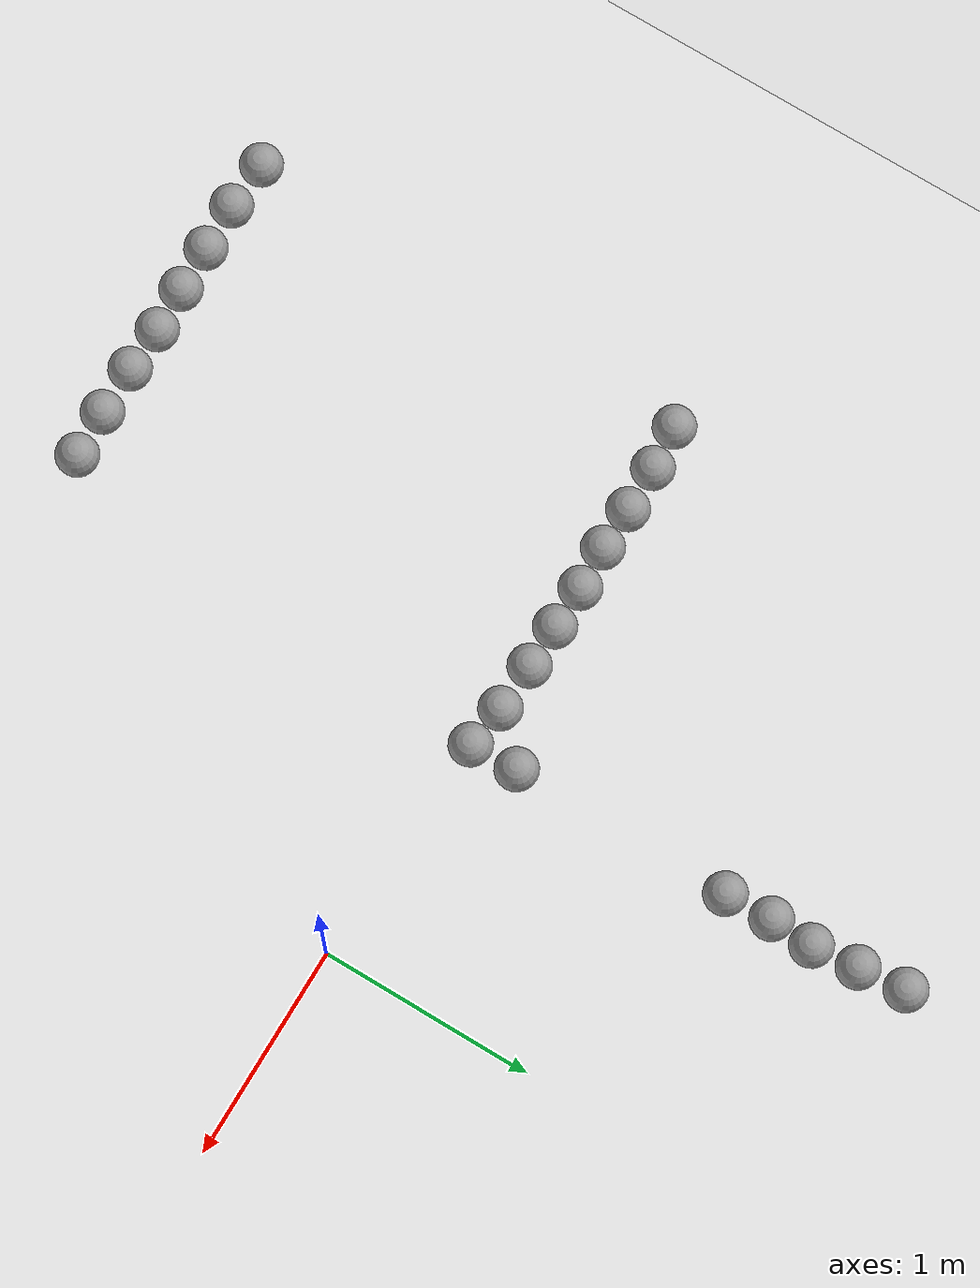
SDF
<sdf version="1.7">
 <world name="default">
  <model name="ground_plane">
   <static>1</static>
   <link name="link">
    <collision name="collision">
     <geometry><plane><normal>0 0 1</normal><size>100 100</size></plane></geometry>
     <surface>
      <contact><collide_bitmask>65535</collide_bitmask></contact>
      <friction><ode><mu>100</mu><mu2>50</mu2></ode></friction>
     </surface>
    </collision>
    <visual name="visual">
     <cast_shadows>0</cast_shadows>
     <geometry><plane><normal>0 0 1</normal><size>100 100</size></plane></geometry>
     <material>
      <script><uri>file://media/materials/scripts/gazebo.material</uri><name>Gazebo/White</name></script>
     </material>
    </visual>
   </link>
  </model>
  <model name="sphere_16">
   <link name="link_0">
    <inertial>
     <mass>1</mass>
     <inertia><ixx>0.1</ixx><ixy>0</ixy><ixz>0</ixz><iyy>0.1</iyy><iyz>0</iyz><izz>0.1</izz></inertia>
    </inertial>
    <visual name="visual">
     <geometry><sphere><radius>0.1</radius></sphere></geometry>
     <material>
      <lighting>1</lighting>
      <script><uri>file://media/materials/scripts/gazebo.material</uri><name>Gazebo/Grey</name></script>
      <shader type="pixel"><normal_map>__default__</normal_map></shader>
      <ambient>0.3 0.3 0.3 1</ambient>
      <diffuse>0.7 0.7 0.7 1</diffuse>
      <specular>0.01 0.01 0.01 1</specular>
      <emissive>0 0 0 1</emissive>
     </material>
    </visual>
    <collision name="collision">
     <geometry><sphere><radius>0.1</radius></sphere></geometry>
     <surface>
      <friction>
       <ode><mu>1</mu><mu2>1</mu2><fdir1>0 0 0</fdir1><slip1>0</slip1><slip2>0</slip2></ode>
       <torsional>
        <coefficient>1</coefficient>
        <patch_radius>0</patch_radius>
        <surface_radius>0</surface_radius>
        <use_patch_radius>1</use_patch_radius>
        <ode><slip>0</slip></ode>
       </torsional>
      </friction>
      <bounce><restitution_coefficient>0</restitution_coefficient><threshold>1e+06</threshold></bounce>
      <contact>
       <collide_without_contact>0</collide_without_contact>
       <collide_without_contact_bitmask>1</collide_without_contact_bitmask>
       <collide_bitmask>1</collide_bitmask>
       <ode>
        <soft_cfm>0</soft_cfm>
        <soft_erp>0.2</soft_erp>
        <kp>1e+13</kp>
        <kd>1</kd>
        <max_vel>0.01</max_vel>
        <min_depth>0</min_depth>
       </ode>
       <bullet>
        <split_impulse>1</split_impulse>
        <split_impulse_penetration_threshold>-0.01</split_impulse_penetration_threshold>
        <soft_cfm>0</soft_cfm>
        <soft_erp>0.2</soft_erp>
        <kp>1e+13</kp>
        <kd>1</kd>
       </bullet>
      </contact>
     </surface>
    </collision>
   </link>
   <static>0</static>
   <pose>-1.29829 -2.0832 0.1 0 -0 0</pose>
  </model>
  <model name="sphere_17">
   <link name="link_0">
    <inertial>
     <mass>1</mass>
     <inertia><ixx>0.1</ixx><ixy>0</ixy><ixz>0</ixz><iyy>0.1</iyy><iyz>0</iyz><izz>0.1</izz></inertia>
    </inertial>
    <visual name="visual">
     <geometry><sphere><radius>0.1</radius></sphere></geometry>
     <material>
      <lighting>1</lighting>
      <script><uri>file://media/materials/scripts/gazebo.material</uri><name>Gazebo/Grey</name></script>
      <shader type="pixel"><normal_map>__default__</normal_map></shader>
      <ambient>0.3 0.3 0.3 1</ambient>
      <diffuse>0.7 0.7 0.7 1</diffuse>
      <specular>0.01 0.01 0.01 1</specular>
      <emissive>0 0 0 1</emissive>
     </material>
    </visual>
    <collision name="collision">
     <geometry><sphere><radius>0.1</radius></sphere></geometry>
     <surface>
      <friction>
       <ode><mu>1</mu><mu2>1</mu2><fdir1>0 0 0</fdir1><slip1>0</slip1><slip2>0</slip2></ode>
       <torsional>
        <coefficient>1</coefficient>
        <patch_radius>0</patch_radius>
        <surface_radius>0</surface_radius>
        <use_patch_radius>1</use_patch_radius>
        <ode><slip>0</slip></ode>
       </torsional>
      </friction>
      <bounce><restitution_coefficient>0</restitution_coefficient><threshold>1e+06</threshold></bounce>
      <contact>
       <collide_without_contact>0</collide_without_contact>
       <collide_without_contact_bitmask>1</collide_without_contact_bitmask>
       <collide_bitmask>1</collide_bitmask>
       <ode>
        <soft_cfm>0</soft_cfm>
        <soft_erp>0.2</soft_erp>
        <kp>1e+13</kp>
        <kd>1</kd>
        <max_vel>0.01</max_vel>
        <min_depth>0</min_depth>
       </ode>
       <bullet>
        <split_impulse>1</split_impulse>
        <split_impulse_penetration_threshold>-0.01</split_impulse_penetration_threshold>
        <soft_cfm>0</soft_cfm>
        <soft_erp>0.2</soft_erp>
        <kp>1e+13</kp>
        <kd>1</kd>
       </bullet>
      </contact>
     </surface>
    </collision>
   </link>
   <static>0</static>
   <pose>-1.52046 -2.09272 0.1 0 -0 0</pose>
  </model>
  <model name="sphere_18">
   <link name="link_0">
    <inertial>
     <mass>1</mass>
     <inertia><ixx>0.1</ixx><ixy>0</ixy><ixz>0</ixz><iyy>0.1</iyy><iyz>0</iyz><izz>0.1</izz></inertia>
    </inertial>
    <visual name="visual">
     <geometry><sphere><radius>0.1</radius></sphere></geometry>
     <material>
      <lighting>1</lighting>
      <script><uri>file://media/materials/scripts/gazebo.material</uri><name>Gazebo/Grey</name></script>
      <shader type="pixel"><normal_map>__default__</normal_map></shader>
      <ambient>0.3 0.3 0.3 1</ambient>
      <diffuse>0.7 0.7 0.7 1</diffuse>
      <specular>0.01 0.01 0.01 1</specular>
      <emissive>0 0 0 1</emissive>
     </material>
    </visual>
    <collision name="collision">
     <geometry><sphere><radius>0.1</radius></sphere></geometry>
     <surface>
      <friction>
       <ode><mu>1</mu><mu2>1</mu2><fdir1>0 0 0</fdir1><slip1>0</slip1><slip2>0</slip2></ode>
       <torsional>
        <coefficient>1</coefficient>
        <patch_radius>0</patch_radius>
        <surface_radius>0</surface_radius>
        <use_patch_radius>1</use_patch_radius>
        <ode><slip>0</slip></ode>
       </torsional>
      </friction>
      <bounce><restitution_coefficient>0</restitution_coefficient><threshold>1e+06</threshold></bounce>
      <contact>
       <collide_without_contact>0</collide_without_contact>
       <collide_without_contact_bitmask>1</collide_without_contact_bitmask>
       <collide_bitmask>1</collide_bitmask>
       <ode>
        <soft_cfm>0</soft_cfm>
        <soft_erp>0.2</soft_erp>
        <kp>1e+13</kp>
        <kd>1</kd>
        <max_vel>0.01</max_vel>
        <min_depth>0</min_depth>
       </ode>
       <bullet>
        <split_impulse>1</split_impulse>
        <split_impulse_penetration_threshold>-0.01</split_impulse_penetration_threshold>
        <soft_cfm>0</soft_cfm>
        <soft_erp>0.2</soft_erp>
        <kp>1e+13</kp>
        <kd>1</kd>
       </bullet>
      </contact>
     </surface>
    </collision>
   </link>
   <static>0</static>
   <pose>-1.75031 -2.09462 0.1 0 -0 0</pose>
  </model>
  <model name="sphere_19">
   <link name="link_0">
    <inertial>
     <mass>1</mass>
     <inertia><ixx>0.1</ixx><ixy>0</ixy><ixz>0</ixz><iyy>0.1</iyy><iyz>0</iyz><izz>0.1</izz></inertia>
    </inertial>
    <visual name="visual">
     <geometry><sphere><radius>0.1</radius></sphere></geometry>
     <material>
      <lighting>1</lighting>
      <script><uri>file://media/materials/scripts/gazebo.material</uri><name>Gazebo/Grey</name></script>
      <shader type="pixel"><normal_map>__default__</normal_map></shader>
      <ambient>0.3 0.3 0.3 1</ambient>
      <diffuse>0.7 0.7 0.7 1</diffuse>
      <specular>0.01 0.01 0.01 1</specular>
      <emissive>0 0 0 1</emissive>
     </material>
    </visual>
    <collision name="collision">
     <geometry><sphere><radius>0.1</radius></sphere></geometry>
     <surface>
      <friction>
       <ode><mu>1</mu><mu2>1</mu2><fdir1>0 0 0</fdir1><slip1>0</slip1><slip2>0</slip2></ode>
       <torsional>
        <coefficient>1</coefficient>
        <patch_radius>0</patch_radius>
        <surface_radius>0</surface_radius>
        <use_patch_radius>1</use_patch_radius>
        <ode><slip>0</slip></ode>
       </torsional>
      </friction>
      <bounce><restitution_coefficient>0</restitution_coefficient><threshold>1e+06</threshold></bounce>
      <contact>
       <collide_without_contact>0</collide_without_contact>
       <collide_without_contact_bitmask>1</collide_without_contact_bitmask>
       <collide_bitmask>1</collide_bitmask>
       <ode>
        <soft_cfm>0</soft_cfm>
        <soft_erp>0.2</soft_erp>
        <kp>1e+13</kp>
        <kd>1</kd>
        <max_vel>0.01</max_vel>
        <min_depth>0</min_depth>
       </ode>
       <bullet>
        <split_impulse>1</split_impulse>
        <split_impulse_penetration_threshold>-0.01</split_impulse_penetration_threshold>
        <soft_cfm>0</soft_cfm>
        <soft_erp>0.2</soft_erp>
        <kp>1e+13</kp>
        <kd>1</kd>
       </bullet>
      </contact>
     </surface>
    </collision>
   </link>
   <static>0</static>
   <pose>-1.96496 -2.08872 0.1 0 -0 0</pose>
  </model>
  <model name="sphere_20">
   <link name="link_0">
    <inertial>
     <mass>1</mass>
     <inertia><ixx>0.1</ixx><ixy>0</ixy><ixz>0</ixz><iyy>0.1</iyy><iyz>0</iyz><izz>0.1</izz></inertia>
    </inertial>
    <visual name="visual">
     <geometry><sphere><radius>0.1</radius></sphere></geometry>
     <material>
      <lighting>1</lighting>
      <script><uri>file://media/materials/scripts/gazebo.material</uri><name>Gazebo/Grey</name></script>
      <shader type="pixel"><normal_map>__default__</normal_map></shader>
      <ambient>0.3 0.3 0.3 1</ambient>
      <diffuse>0.7 0.7 0.7 1</diffuse>
      <specular>0.01 0.01 0.01 1</specular>
      <emissive>0 0 0 1</emissive>
     </material>
    </visual>
    <collision name="collision">
     <geometry><sphere><radius>0.1</radius></sphere></geometry>
     <surface>
      <friction>
       <ode><mu>1</mu><mu2>1</mu2><fdir1>0 0 0</fdir1><slip1>0</slip1><slip2>0</slip2></ode>
       <torsional>
        <coefficient>1</coefficient>
        <patch_radius>0</patch_radius>
        <surface_radius>0</surface_radius>
        <use_patch_radius>1</use_patch_radius>
        <ode><slip>0</slip></ode>
       </torsional>
      </friction>
      <bounce><restitution_coefficient>0</restitution_coefficient><threshold>1e+06</threshold></bounce>
      <contact>
       <collide_without_contact>0</collide_without_contact>
       <collide_without_contact_bitmask>1</collide_without_contact_bitmask>
       <collide_bitmask>1</collide_bitmask>
       <ode>
        <soft_cfm>0</soft_cfm>
        <soft_erp>0.2</soft_erp>
        <kp>1e+13</kp>
        <kd>1</kd>
        <max_vel>0.01</max_vel>
        <min_depth>0</min_depth>
       </ode>
       <bullet>
        <split_impulse>1</split_impulse>
        <split_impulse_penetration_threshold>-0.01</split_impulse_penetration_threshold>
        <soft_cfm>0</soft_cfm>
        <soft_erp>0.2</soft_erp>
        <kp>1e+13</kp>
        <kd>1</kd>
       </bullet>
      </contact>
     </surface>
    </collision>
   </link>
   <static>0</static>
   <pose>-2.17811 -2.09842 0.1 0 -0 0</pose>
  </model>
  <model name="sphere_21">
   <link name="link_0">
    <inertial>
     <mass>1</mass>
     <inertia><ixx>0.1</ixx><ixy>0</ixy><ixz>0</ixz><iyy>0.1</iyy><iyz>0</iyz><izz>0.1</izz></inertia>
    </inertial>
    <visual name="visual">
     <geometry><sphere><radius>0.1</radius></sphere></geometry>
     <material>
      <lighting>1</lighting>
      <script><uri>file://media/materials/scripts/gazebo.material</uri><name>Gazebo/Grey</name></script>
      <shader type="pixel"><normal_map>__default__</normal_map></shader>
      <ambient>0.3 0.3 0.3 1</ambient>
      <diffuse>0.7 0.7 0.7 1</diffuse>
      <specular>0.01 0.01 0.01 1</specular>
      <emissive>0 0 0 1</emissive>
     </material>
    </visual>
    <collision name="collision">
     <geometry><sphere><radius>0.1</radius></sphere></geometry>
     <surface>
      <friction>
       <ode><mu>1</mu><mu2>1</mu2><fdir1>0 0 0</fdir1><slip1>0</slip1><slip2>0</slip2></ode>
       <torsional>
        <coefficient>1</coefficient>
        <patch_radius>0</patch_radius>
        <surface_radius>0</surface_radius>
        <use_patch_radius>1</use_patch_radius>
        <ode><slip>0</slip></ode>
       </torsional>
      </friction>
      <bounce><restitution_coefficient>0</restitution_coefficient><threshold>1e+06</threshold></bounce>
      <contact>
       <collide_without_contact>0</collide_without_contact>
       <collide_without_contact_bitmask>1</collide_without_contact_bitmask>
       <collide_bitmask>1</collide_bitmask>
       <ode>
        <soft_cfm>0</soft_cfm>
        <soft_erp>0.2</soft_erp>
        <kp>1e+13</kp>
        <kd>1</kd>
        <max_vel>0.01</max_vel>
        <min_depth>0</min_depth>
       </ode>
       <bullet>
        <split_impulse>1</split_impulse>
        <split_impulse_penetration_threshold>-0.01</split_impulse_penetration_threshold>
        <soft_cfm>0</soft_cfm>
        <soft_erp>0.2</soft_erp>
        <kp>1e+13</kp>
        <kd>1</kd>
       </bullet>
      </contact>
     </surface>
    </collision>
   </link>
   <static>0</static>
   <pose>-2.39552 -2.10485 0.1 0 -0 0</pose>
  </model>
  <model name="sphere_22">
   <link name="link_0">
    <inertial>
     <mass>1</mass>
     <inertia><ixx>0.1</ixx><ixy>0</ixy><ixz>0</ixz><iyy>0.1</iyy><iyz>0</iyz><izz>0.1</izz></inertia>
    </inertial>
    <visual name="visual">
     <geometry><sphere><radius>0.1</radius></sphere></geometry>
     <material>
      <lighting>1</lighting>
      <script><uri>file://media/materials/scripts/gazebo.material</uri><name>Gazebo/Grey</name></script>
      <shader type="pixel"><normal_map>__default__</normal_map></shader>
      <ambient>0.3 0.3 0.3 1</ambient>
      <diffuse>0.7 0.7 0.7 1</diffuse>
      <specular>0.01 0.01 0.01 1</specular>
      <emissive>0 0 0 1</emissive>
     </material>
    </visual>
    <collision name="collision">
     <geometry><sphere><radius>0.1</radius></sphere></geometry>
     <surface>
      <friction>
       <ode><mu>1</mu><mu2>1</mu2><fdir1>0 0 0</fdir1><slip1>0</slip1><slip2>0</slip2></ode>
       <torsional>
        <coefficient>1</coefficient>
        <patch_radius>0</patch_radius>
        <surface_radius>0</surface_radius>
        <use_patch_radius>1</use_patch_radius>
        <ode><slip>0</slip></ode>
       </torsional>
      </friction>
      <bounce><restitution_coefficient>0</restitution_coefficient><threshold>1e+06</threshold></bounce>
      <contact>
       <collide_without_contact>0</collide_without_contact>
       <collide_without_contact_bitmask>1</collide_without_contact_bitmask>
       <collide_bitmask>1</collide_bitmask>
       <ode>
        <soft_cfm>0</soft_cfm>
        <soft_erp>0.2</soft_erp>
        <kp>1e+13</kp>
        <kd>1</kd>
        <max_vel>0.01</max_vel>
        <min_depth>0</min_depth>
       </ode>
       <bullet>
        <split_impulse>1</split_impulse>
        <split_impulse_penetration_threshold>-0.01</split_impulse_penetration_threshold>
        <soft_cfm>0</soft_cfm>
        <soft_erp>0.2</soft_erp>
        <kp>1e+13</kp>
        <kd>1</kd>
       </bullet>
      </contact>
     </surface>
    </collision>
   </link>
   <static>0</static>
   <pose>-2.62218 -2.11134 0.1 0 -0 0</pose>
  </model>
  <model name="sphere_23">
   <link name="link_0">
    <inertial>
     <mass>1</mass>
     <inertia><ixx>0.1</ixx><ixy>0</ixy><ixz>0</ixz><iyy>0.1</iyy><iyz>0</iyz><izz>0.1</izz></inertia>
    </inertial>
    <visual name="visual">
     <geometry><sphere><radius>0.1</radius></sphere></geometry>
     <material>
      <lighting>1</lighting>
      <script><uri>file://media/materials/scripts/gazebo.material</uri><name>Gazebo/Grey</name></script>
      <shader type="pixel"><normal_map>__default__</normal_map></shader>
      <ambient>0.3 0.3 0.3 1</ambient>
      <diffuse>0.7 0.7 0.7 1</diffuse>
      <specular>0.01 0.01 0.01 1</specular>
      <emissive>0 0 0 1</emissive>
     </material>
    </visual>
    <collision name="collision">
     <geometry><sphere><radius>0.1</radius></sphere></geometry>
     <surface>
      <friction>
       <ode><mu>1</mu><mu2>1</mu2><fdir1>0 0 0</fdir1><slip1>0</slip1><slip2>0</slip2></ode>
       <torsional>
        <coefficient>1</coefficient>
        <patch_radius>0</patch_radius>
        <surface_radius>0</surface_radius>
        <use_patch_radius>1</use_patch_radius>
        <ode><slip>0</slip></ode>
       </torsional>
      </friction>
      <bounce><restitution_coefficient>0</restitution_coefficient><threshold>1e+06</threshold></bounce>
      <contact>
       <collide_without_contact>0</collide_without_contact>
       <collide_without_contact_bitmask>1</collide_without_contact_bitmask>
       <collide_bitmask>1</collide_bitmask>
       <ode>
        <soft_cfm>0</soft_cfm>
        <soft_erp>0.2</soft_erp>
        <kp>1e+13</kp>
        <kd>1</kd>
        <max_vel>0.01</max_vel>
        <min_depth>0</min_depth>
       </ode>
       <bullet>
        <split_impulse>1</split_impulse>
        <split_impulse_penetration_threshold>-0.01</split_impulse_penetration_threshold>
        <soft_cfm>0</soft_cfm>
        <soft_erp>0.2</soft_erp>
        <kp>1e+13</kp>
        <kd>1</kd>
       </bullet>
      </contact>
     </surface>
    </collision>
   </link>
   <static>0</static>
   <pose>-2.85361 -2.09939 0.1 0 -0 0</pose>
  </model>
  <model name="sphere_85">
   <link name="link_0">
    <inertial>
     <mass>1</mass>
     <inertia><ixx>0.1</ixx><ixy>0</ixy><ixz>0</ixz><iyy>0.1</iyy><iyz>0</iyz><izz>0.1</izz></inertia>
    </inertial>
    <visual name="visual">
     <geometry><sphere><radius>0.1</radius></sphere></geometry>
     <material>
      <lighting>1</lighting>
      <script><uri>file://media/materials/scripts/gazebo.material</uri><name>Gazebo/Grey</name></script>
      <shader type="pixel"><normal_map>__default__</normal_map></shader>
      <ambient>0.3 0.3 0.3 1</ambient>
      <diffuse>0.7 0.7 0.7 1</diffuse>
      <specular>0.01 0.01 0.01 1</specular>
      <emissive>0 0 0 1</emissive>
     </material>
    </visual>
    <collision name="collision">
     <geometry><sphere><radius>0.1</radius></sphere></geometry>
     <surface>
      <friction>
       <ode><mu>1</mu><mu2>1</mu2><fdir1>0 0 0</fdir1><slip1>0</slip1><slip2>0</slip2></ode>
       <torsional>
        <coefficient>1</coefficient>
        <patch_radius>0</patch_radius>
        <surface_radius>0</surface_radius>
        <use_patch_radius>1</use_patch_radius>
        <ode><slip>0</slip></ode>
       </torsional>
      </friction>
      <bounce><restitution_coefficient>0</restitution_coefficient><threshold>1e+06</threshold></bounce>
      <contact>
       <collide_without_contact>0</collide_without_contact>
       <collide_without_contact_bitmask>1</collide_without_contact_bitmask>
       <collide_bitmask>1</collide_bitmask>
       <ode>
        <soft_cfm>0</soft_cfm>
        <soft_erp>0.2</soft_erp>
        <kp>1e+13</kp>
        <kd>1</kd>
        <max_vel>0.01</max_vel>
        <min_depth>0</min_depth>
       </ode>
       <bullet>
        <split_impulse>1</split_impulse>
        <split_impulse_penetration_threshold>-0.01</split_impulse_penetration_threshold>
        <soft_cfm>0</soft_cfm>
        <soft_erp>0.2</soft_erp>
        <kp>1e+13</kp>
        <kd>1</kd>
       </bullet>
      </contact>
     </surface>
    </collision>
   </link>
   <static>0</static>
   <pose>-1.08222 0.064075 0.1 0.005987 0.035998 0.001365</pose>
  </model>
  <model name="sphere_86">
   <link name="link_0">
    <inertial>
     <mass>1</mass>
     <inertia><ixx>0.1</ixx><ixy>0</ixy><ixz>0</ixz><iyy>0.1</iyy><iyz>0</iyz><izz>0.1</izz></inertia>
    </inertial>
    <visual name="visual">
     <geometry><sphere><radius>0.1</radius></sphere></geometry>
     <material>
      <lighting>1</lighting>
      <script><uri>file://media/materials/scripts/gazebo.material</uri><name>Gazebo/Grey</name></script>
      <shader type="pixel"><normal_map>__default__</normal_map></shader>
      <ambient>0.3 0.3 0.3 1</ambient>
      <diffuse>0.7 0.7 0.7 1</diffuse>
      <specular>0.01 0.01 0.01 1</specular>
      <emissive>0 0 0 1</emissive>
     </material>
    </visual>
    <collision name="collision">
     <geometry><sphere><radius>0.1</radius></sphere></geometry>
     <surface>
      <friction>
       <ode><mu>1</mu><mu2>1</mu2><fdir1>0 0 0</fdir1><slip1>0</slip1><slip2>0</slip2></ode>
       <torsional>
        <coefficient>1</coefficient>
        <patch_radius>0</patch_radius>
        <surface_radius>0</surface_radius>
        <use_patch_radius>1</use_patch_radius>
        <ode><slip>0</slip></ode>
       </torsional>
      </friction>
      <bounce><restitution_coefficient>0</restitution_coefficient><threshold>1e+06</threshold></bounce>
      <contact>
       <collide_without_contact>0</collide_without_contact>
       <collide_without_contact_bitmask>1</collide_without_contact_bitmask>
       <collide_bitmask>1</collide_bitmask>
       <ode>
        <soft_cfm>0</soft_cfm>
        <soft_erp>0.2</soft_erp>
        <kp>1e+13</kp>
        <kd>1</kd>
        <max_vel>0.01</max_vel>
        <min_depth>0</min_depth>
       </ode>
       <bullet>
        <split_impulse>1</split_impulse>
        <split_impulse_penetration_threshold>-0.01</split_impulse_penetration_threshold>
        <soft_cfm>0</soft_cfm>
        <soft_erp>0.2</soft_erp>
        <kp>1e+13</kp>
        <kd>1</kd>
       </bullet>
      </contact>
     </surface>
    </collision>
   </link>
   <static>0</static>
   <pose>-1.28551 0.091382 0.1 -0.006611 -0.040727 0.001393</pose>
  </model>
  <model name="sphere_87">
   <link name="link_0">
    <inertial>
     <mass>1</mass>
     <inertia><ixx>0.1</ixx><ixy>0</ixy><ixz>0</ixz><iyy>0.1</iyy><iyz>0</iyz><izz>0.1</izz></inertia>
    </inertial>
    <visual name="visual">
     <geometry><sphere><radius>0.1</radius></sphere></geometry>
     <material>
      <lighting>1</lighting>
      <script><uri>file://media/materials/scripts/gazebo.material</uri><name>Gazebo/Grey</name></script>
      <shader type="pixel"><normal_map>__default__</normal_map></shader>
      <ambient>0.3 0.3 0.3 1</ambient>
      <diffuse>0.7 0.7 0.7 1</diffuse>
      <specular>0.01 0.01 0.01 1</specular>
      <emissive>0 0 0 1</emissive>
     </material>
    </visual>
    <collision name="collision">
     <geometry><sphere><radius>0.1</radius></sphere></geometry>
     <surface>
      <friction>
       <ode><mu>1</mu><mu2>1</mu2><fdir1>0 0 0</fdir1><slip1>0</slip1><slip2>0</slip2></ode>
       <torsional>
        <coefficient>1</coefficient>
        <patch_radius>0</patch_radius>
        <surface_radius>0</surface_radius>
        <use_patch_radius>1</use_patch_radius>
        <ode><slip>0</slip></ode>
       </torsional>
      </friction>
      <bounce><restitution_coefficient>0</restitution_coefficient><threshold>1e+06</threshold></bounce>
      <contact>
       <collide_without_contact>0</collide_without_contact>
       <collide_without_contact_bitmask>1</collide_without_contact_bitmask>
       <collide_bitmask>1</collide_bitmask>
       <ode>
        <soft_cfm>0</soft_cfm>
        <soft_erp>0.2</soft_erp>
        <kp>1e+13</kp>
        <kd>1</kd>
        <max_vel>0.01</max_vel>
        <min_depth>0</min_depth>
       </ode>
       <bullet>
        <split_impulse>1</split_impulse>
        <split_impulse_penetration_threshold>-0.01</split_impulse_penetration_threshold>
        <soft_cfm>0</soft_cfm>
        <soft_erp>0.2</soft_erp>
        <kp>1e+13</kp>
        <kd>1</kd>
       </bullet>
      </contact>
     </surface>
    </collision>
   </link>
   <static>0</static>
   <pose>-1.51169 0.101938 0.1 0 -0 0</pose>
  </model>
  <model name="sphere_88">
   <link name="link_0">
    <inertial>
     <mass>1</mass>
     <inertia><ixx>0.1</ixx><ixy>0</ixy><ixz>0</ixz><iyy>0.1</iyy><iyz>0</iyz><izz>0.1</izz></inertia>
    </inertial>
    <visual name="visual">
     <geometry><sphere><radius>0.1</radius></sphere></geometry>
     <material>
      <lighting>1</lighting>
      <script><uri>file://media/materials/scripts/gazebo.material</uri><name>Gazebo/Grey</name></script>
      <shader type="pixel"><normal_map>__default__</normal_map></shader>
      <ambient>0.3 0.3 0.3 1</ambient>
      <diffuse>0.7 0.7 0.7 1</diffuse>
      <specular>0.01 0.01 0.01 1</specular>
      <emissive>0 0 0 1</emissive>
     </material>
    </visual>
    <collision name="collision">
     <geometry><sphere><radius>0.1</radius></sphere></geometry>
     <surface>
      <friction>
       <ode><mu>1</mu><mu2>1</mu2><fdir1>0 0 0</fdir1><slip1>0</slip1><slip2>0</slip2></ode>
       <torsional>
        <coefficient>1</coefficient>
        <patch_radius>0</patch_radius>
        <surface_radius>0</surface_radius>
        <use_patch_radius>1</use_patch_radius>
        <ode><slip>0</slip></ode>
       </torsional>
      </friction>
      <bounce><restitution_coefficient>0</restitution_coefficient><threshold>1e+06</threshold></bounce>
      <contact>
       <collide_without_contact>0</collide_without_contact>
       <collide_without_contact_bitmask>1</collide_without_contact_bitmask>
       <collide_bitmask>1</collide_bitmask>
       <ode>
        <soft_cfm>0</soft_cfm>
        <soft_erp>0.2</soft_erp>
        <kp>1e+13</kp>
        <kd>1</kd>
        <max_vel>0.01</max_vel>
        <min_depth>0</min_depth>
       </ode>
       <bullet>
        <split_impulse>1</split_impulse>
        <split_impulse_penetration_threshold>-0.01</split_impulse_penetration_threshold>
        <soft_cfm>0</soft_cfm>
        <soft_erp>0.2</soft_erp>
        <kp>1e+13</kp>
        <kd>1</kd>
       </bullet>
      </contact>
     </surface>
    </collision>
   </link>
   <static>0</static>
   <pose>-1.71901 0.106668 0.1 0.00104 0.032357 0.00026</pose>
  </model>
  <model name="sphere_89">
   <link name="link_0">
    <inertial>
     <mass>1</mass>
     <inertia><ixx>0.1</ixx><ixy>0</ixy><ixz>0</ixz><iyy>0.1</iyy><iyz>0</iyz><izz>0.1</izz></inertia>
    </inertial>
    <visual name="visual">
     <geometry><sphere><radius>0.1</radius></sphere></geometry>
     <material>
      <lighting>1</lighting>
      <script><uri>file://media/materials/scripts/gazebo.material</uri><name>Gazebo/Grey</name></script>
      <shader type="pixel"><normal_map>__default__</normal_map></shader>
      <ambient>0.3 0.3 0.3 1</ambient>
      <diffuse>0.7 0.7 0.7 1</diffuse>
      <specular>0.01 0.01 0.01 1</specular>
      <emissive>0 0 0 1</emissive>
     </material>
    </visual>
    <collision name="collision">
     <geometry><sphere><radius>0.1</radius></sphere></geometry>
     <surface>
      <friction>
       <ode><mu>1</mu><mu2>1</mu2><fdir1>0 0 0</fdir1><slip1>0</slip1><slip2>0</slip2></ode>
       <torsional>
        <coefficient>1</coefficient>
        <patch_radius>0</patch_radius>
        <surface_radius>0</surface_radius>
        <use_patch_radius>1</use_patch_radius>
        <ode><slip>0</slip></ode>
       </torsional>
      </friction>
      <bounce><restitution_coefficient>0</restitution_coefficient><threshold>1e+06</threshold></bounce>
      <contact>
       <collide_without_contact>0</collide_without_contact>
       <collide_without_contact_bitmask>1</collide_without_contact_bitmask>
       <collide_bitmask>1</collide_bitmask>
       <ode>
        <soft_cfm>0</soft_cfm>
        <soft_erp>0.2</soft_erp>
        <kp>1e+13</kp>
        <kd>1</kd>
        <max_vel>0.01</max_vel>
        <min_depth>0</min_depth>
       </ode>
       <bullet>
        <split_impulse>1</split_impulse>
        <split_impulse_penetration_threshold>-0.01</split_impulse_penetration_threshold>
        <soft_cfm>0</soft_cfm>
        <soft_erp>0.2</soft_erp>
        <kp>1e+13</kp>
        <kd>1</kd>
       </bullet>
      </contact>
     </surface>
    </collision>
   </link>
   <static>0</static>
   <pose>-1.924 0.111839 0.1 -0.001156 -0.037218 0.000265</pose>
  </model>
  <model name="sphere_90">
   <link name="link_0">
    <inertial>
     <mass>1</mass>
     <inertia><ixx>0.1</ixx><ixy>0</ixy><ixz>0</ixz><iyy>0.1</iyy><iyz>0</iyz><izz>0.1</izz></inertia>
    </inertial>
    <visual name="visual">
     <geometry><sphere><radius>0.1</radius></sphere></geometry>
     <material>
      <lighting>1</lighting>
      <script><uri>file://media/materials/scripts/gazebo.material</uri><name>Gazebo/Grey</name></script>
      <shader type="pixel"><normal_map>__default__</normal_map></shader>
      <ambient>0.3 0.3 0.3 1</ambient>
      <diffuse>0.7 0.7 0.7 1</diffuse>
      <specular>0.01 0.01 0.01 1</specular>
      <emissive>0 0 0 1</emissive>
     </material>
    </visual>
    <collision name="collision">
     <geometry><sphere><radius>0.1</radius></sphere></geometry>
     <surface>
      <friction>
       <ode><mu>1</mu><mu2>1</mu2><fdir1>0 0 0</fdir1><slip1>0</slip1><slip2>0</slip2></ode>
       <torsional>
        <coefficient>1</coefficient>
        <patch_radius>0</patch_radius>
        <surface_radius>0</surface_radius>
        <use_patch_radius>1</use_patch_radius>
        <ode><slip>0</slip></ode>
       </torsional>
      </friction>
      <bounce><restitution_coefficient>0</restitution_coefficient><threshold>1e+06</threshold></bounce>
      <contact>
       <collide_without_contact>0</collide_without_contact>
       <collide_without_contact_bitmask>1</collide_without_contact_bitmask>
       <collide_bitmask>1</collide_bitmask>
       <ode>
        <soft_cfm>0</soft_cfm>
        <soft_erp>0.2</soft_erp>
        <kp>1e+13</kp>
        <kd>1</kd>
        <max_vel>0.01</max_vel>
        <min_depth>0</min_depth>
       </ode>
       <bullet>
        <split_impulse>1</split_impulse>
        <split_impulse_penetration_threshold>-0.01</split_impulse_penetration_threshold>
        <soft_cfm>0</soft_cfm>
        <soft_erp>0.2</soft_erp>
        <kp>1e+13</kp>
        <kd>1</kd>
       </bullet>
      </contact>
     </surface>
    </collision>
   </link>
   <static>0</static>
   <pose>-2.13055 0.103156 0.1 0.001826 0.059351 0.000319</pose>
  </model>
  <model name="sphere_91">
   <link name="link_0">
    <inertial>
     <mass>1</mass>
     <inertia><ixx>0.1</ixx><ixy>0</ixy><ixz>0</ixz><iyy>0.1</iyy><iyz>0</iyz><izz>0.1</izz></inertia>
    </inertial>
    <visual name="visual">
     <geometry><sphere><radius>0.1</radius></sphere></geometry>
     <material>
      <lighting>1</lighting>
      <script><uri>file://media/materials/scripts/gazebo.material</uri><name>Gazebo/Grey</name></script>
      <shader type="pixel"><normal_map>__default__</normal_map></shader>
      <ambient>0.3 0.3 0.3 1</ambient>
      <diffuse>0.7 0.7 0.7 1</diffuse>
      <specular>0.01 0.01 0.01 1</specular>
      <emissive>0 0 0 1</emissive>
     </material>
    </visual>
    <collision name="collision">
     <geometry><sphere><radius>0.1</radius></sphere></geometry>
     <surface>
      <friction>
       <ode><mu>1</mu><mu2>1</mu2><fdir1>0 0 0</fdir1><slip1>0</slip1><slip2>0</slip2></ode>
       <torsional>
        <coefficient>1</coefficient>
        <patch_radius>0</patch_radius>
        <surface_radius>0</surface_radius>
        <use_patch_radius>1</use_patch_radius>
        <ode><slip>0</slip></ode>
       </torsional>
      </friction>
      <bounce><restitution_coefficient>0</restitution_coefficient><threshold>1e+06</threshold></bounce>
      <contact>
       <collide_without_contact>0</collide_without_contact>
       <collide_without_contact_bitmask>1</collide_without_contact_bitmask>
       <collide_bitmask>1</collide_bitmask>
       <ode>
        <soft_cfm>0</soft_cfm>
        <soft_erp>0.2</soft_erp>
        <kp>1e+13</kp>
        <kd>1</kd>
        <max_vel>0.01</max_vel>
        <min_depth>0</min_depth>
       </ode>
       <bullet>
        <split_impulse>1</split_impulse>
        <split_impulse_penetration_threshold>-0.01</split_impulse_penetration_threshold>
        <soft_cfm>0</soft_cfm>
        <soft_erp>0.2</soft_erp>
        <kp>1e+13</kp>
        <kd>1</kd>
       </bullet>
      </contact>
     </surface>
    </collision>
   </link>
   <static>0</static>
   <pose>-2.33554 0.108563 0.1 -0.001915 -0.063892 0.000326</pose>
  </model>
  <model name="sphere_92">
   <link name="link_0">
    <inertial>
     <mass>1</mass>
     <inertia><ixx>0.1</ixx><ixy>0</ixy><ixz>0</ixz><iyy>0.1</iyy><iyz>0</iyz><izz>0.1</izz></inertia>
    </inertial>
    <visual name="visual">
     <geometry><sphere><radius>0.1</radius></sphere></geometry>
     <material>
      <lighting>1</lighting>
      <script><uri>file://media/materials/scripts/gazebo.material</uri><name>Gazebo/Grey</name></script>
      <shader type="pixel"><normal_map>__default__</normal_map></shader>
      <ambient>0.3 0.3 0.3 1</ambient>
      <diffuse>0.7 0.7 0.7 1</diffuse>
      <specular>0.01 0.01 0.01 1</specular>
      <emissive>0 0 0 1</emissive>
     </material>
    </visual>
    <collision name="collision">
     <geometry><sphere><radius>0.1</radius></sphere></geometry>
     <surface>
      <friction>
       <ode><mu>1</mu><mu2>1</mu2><fdir1>0 0 0</fdir1><slip1>0</slip1><slip2>0</slip2></ode>
       <torsional>
        <coefficient>1</coefficient>
        <patch_radius>0</patch_radius>
        <surface_radius>0</surface_radius>
        <use_patch_radius>1</use_patch_radius>
        <ode><slip>0</slip></ode>
       </torsional>
      </friction>
      <bounce><restitution_coefficient>0</restitution_coefficient><threshold>1e+06</threshold></bounce>
      <contact>
       <collide_without_contact>0</collide_without_contact>
       <collide_without_contact_bitmask>1</collide_without_contact_bitmask>
       <collide_bitmask>1</collide_bitmask>
       <ode>
        <soft_cfm>0</soft_cfm>
        <soft_erp>0.2</soft_erp>
        <kp>1e+13</kp>
        <kd>1</kd>
        <max_vel>0.01</max_vel>
        <min_depth>0</min_depth>
       </ode>
       <bullet>
        <split_impulse>1</split_impulse>
        <split_impulse_penetration_threshold>-0.01</split_impulse_penetration_threshold>
        <soft_cfm>0</soft_cfm>
        <soft_erp>0.2</soft_erp>
        <kp>1e+13</kp>
        <kd>1</kd>
       </bullet>
      </contact>
     </surface>
    </collision>
   </link>
   <static>0</static>
   <pose>-2.55218 0.106482 0.1 0 -0 0</pose>
  </model>
  <model name="sphere_93">
   <link name="link_0">
    <inertial>
     <mass>1</mass>
     <inertia><ixx>0.1</ixx><ixy>0</ixy><ixz>0</ixz><iyy>0.1</iyy><iyz>0</iyz><izz>0.1</izz></inertia>
    </inertial>
    <visual name="visual">
     <geometry><sphere><radius>0.1</radius></sphere></geometry>
     <material>
      <lighting>1</lighting>
      <script><uri>file://media/materials/scripts/gazebo.material</uri><name>Gazebo/Grey</name></script>
      <shader type="pixel"><normal_map>__default__</normal_map></shader>
      <ambient>0.3 0.3 0.3 1</ambient>
      <diffuse>0.7 0.7 0.7 1</diffuse>
      <specular>0.01 0.01 0.01 1</specular>
      <emissive>0 0 0 1</emissive>
     </material>
    </visual>
    <collision name="collision">
     <geometry><sphere><radius>0.1</radius></sphere></geometry>
     <surface>
      <friction>
       <ode><mu>1</mu><mu2>1</mu2><fdir1>0 0 0</fdir1><slip1>0</slip1><slip2>0</slip2></ode>
       <torsional>
        <coefficient>1</coefficient>
        <patch_radius>0</patch_radius>
        <surface_radius>0</surface_radius>
        <use_patch_radius>1</use_patch_radius>
        <ode><slip>0</slip></ode>
       </torsional>
      </friction>
      <bounce><restitution_coefficient>0</restitution_coefficient><threshold>1e+06</threshold></bounce>
      <contact>
       <collide_without_contact>0</collide_without_contact>
       <collide_without_contact_bitmask>1</collide_without_contact_bitmask>
       <collide_bitmask>1</collide_bitmask>
       <ode>
        <soft_cfm>0</soft_cfm>
        <soft_erp>0.2</soft_erp>
        <kp>1e+13</kp>
        <kd>1</kd>
        <max_vel>0.01</max_vel>
        <min_depth>0</min_depth>
       </ode>
       <bullet>
        <split_impulse>1</split_impulse>
        <split_impulse_penetration_threshold>-0.01</split_impulse_penetration_threshold>
        <soft_cfm>0</soft_cfm>
        <soft_erp>0.2</soft_erp>
        <kp>1e+13</kp>
        <kd>1</kd>
       </bullet>
      </contact>
     </surface>
    </collision>
   </link>
   <static>0</static>
   <pose>-2.76279 0.091574 0.1 0 -0 0</pose>
  </model>
  <model name="sphere_102">
   <link name="link_0">
    <inertial>
     <mass>1</mass>
     <inertia><ixx>0.1</ixx><ixy>0</ixy><ixz>0</ixz><iyy>0.1</iyy><iyz>0</iyz><izz>0.1</izz></inertia>
    </inertial>
    <visual name="visual">
     <geometry><sphere><radius>0.1</radius></sphere></geometry>
     <material>
      <lighting>1</lighting>
      <script><uri>file://media/materials/scripts/gazebo.material</uri><name>Gazebo/Grey</name></script>
      <shader type="pixel"><normal_map>__default__</normal_map></shader>
      <ambient>0.3 0.3 0.3 1</ambient>
      <diffuse>0.7 0.7 0.7 1</diffuse>
      <specular>0.01 0.01 0.01 1</specular>
      <emissive>0 0 0 1</emissive>
     </material>
    </visual>
    <collision name="collision">
     <geometry><sphere><radius>0.1</radius></sphere></geometry>
     <surface>
      <friction>
       <ode><mu>1</mu><mu2>1</mu2><fdir1>0 0 0</fdir1><slip1>0</slip1><slip2>0</slip2></ode>
       <torsional>
        <coefficient>1</coefficient>
        <patch_radius>0</patch_radius>
        <surface_radius>0</surface_radius>
        <use_patch_radius>1</use_patch_radius>
        <ode><slip>0</slip></ode>
       </torsional>
      </friction>
      <bounce><restitution_coefficient>0</restitution_coefficient><threshold>1e+06</threshold></bounce>
      <contact>
       <collide_without_contact>0</collide_without_contact>
       <collide_without_contact_bitmask>1</collide_without_contact_bitmask>
       <collide_bitmask>1</collide_bitmask>
       <ode>
        <soft_cfm>0</soft_cfm>
        <soft_erp>0.2</soft_erp>
        <kp>1e+13</kp>
        <kd>1</kd>
        <max_vel>0.01</max_vel>
        <min_depth>0</min_depth>
       </ode>
       <bullet>
        <split_impulse>1</split_impulse>
        <split_impulse_penetration_threshold>-0.01</split_impulse_penetration_threshold>
        <soft_cfm>0</soft_cfm>
        <soft_erp>0.2</soft_erp>
        <kp>1e+13</kp>
        <kd>1</kd>
       </bullet>
      </contact>
     </surface>
    </collision>
   </link>
   <static>0</static>
   <pose>-1.0919 0.289728 0.1 0 -0 0</pose>
  </model>
  <model name="sphere_107">
   <link name="link_0">
    <inertial>
     <mass>1</mass>
     <inertia><ixx>0.1</ixx><ixy>0</ixy><ixz>0</ixz><iyy>0.1</iyy><iyz>0</iyz><izz>0.1</izz></inertia>
    </inertial>
    <visual name="visual">
     <geometry><sphere><radius>0.1</radius></sphere></geometry>
     <material>
      <lighting>1</lighting>
      <script><uri>file://media/materials/scripts/gazebo.material</uri><name>Gazebo/Grey</name></script>
      <shader type="pixel"><normal_map>__default__</normal_map></shader>
      <ambient>0.3 0.3 0.3 1</ambient>
      <diffuse>0.7 0.7 0.7 1</diffuse>
      <specular>0.01 0.01 0.01 1</specular>
      <emissive>0 0 0 1</emissive>
     </material>
    </visual>
    <collision name="collision">
     <geometry><sphere><radius>0.1</radius></sphere></geometry>
     <surface>
      <friction>
       <ode><mu>1</mu><mu2>1</mu2><fdir1>0 0 0</fdir1><slip1>0</slip1><slip2>0</slip2></ode>
       <torsional>
        <coefficient>1</coefficient>
        <patch_radius>0</patch_radius>
        <surface_radius>0</surface_radius>
        <use_patch_radius>1</use_patch_radius>
        <ode><slip>0</slip></ode>
       </torsional>
      </friction>
      <bounce><restitution_coefficient>0</restitution_coefficient><threshold>1e+06</threshold></bounce>
      <contact>
       <collide_without_contact>0</collide_without_contact>
       <collide_without_contact_bitmask>1</collide_without_contact_bitmask>
       <collide_bitmask>1</collide_bitmask>
       <ode>
        <soft_cfm>0</soft_cfm>
        <soft_erp>0.2</soft_erp>
        <kp>1e+13</kp>
        <kd>1</kd>
        <max_vel>0.01</max_vel>
        <min_depth>0</min_depth>
       </ode>
       <bullet>
        <split_impulse>1</split_impulse>
        <split_impulse_penetration_threshold>-0.01</split_impulse_penetration_threshold>
        <soft_cfm>0</soft_cfm>
        <soft_erp>0.2</soft_erp>
        <kp>1e+13</kp>
        <kd>1</kd>
       </bullet>
      </contact>
     </surface>
    </collision>
   </link>
   <static>0</static>
   <pose>-1.08919 1.33466 0.1 0 -0 0</pose>
  </model>
  <model name="sphere_108">
   <link name="link_0">
    <inertial>
     <mass>1</mass>
     <inertia><ixx>0.1</ixx><ixy>0</ixy><ixz>0</ixz><iyy>0.1</iyy><iyz>0</iyz><izz>0.1</izz></inertia>
    </inertial>
    <visual name="visual">
     <geometry><sphere><radius>0.1</radius></sphere></geometry>
     <material>
      <lighting>1</lighting>
      <script><uri>file://media/materials/scripts/gazebo.material</uri><name>Gazebo/Grey</name></script>
      <shader type="pixel"><normal_map>__default__</normal_map></shader>
      <ambient>0.3 0.3 0.3 1</ambient>
      <diffuse>0.7 0.7 0.7 1</diffuse>
      <specular>0.01 0.01 0.01 1</specular>
      <emissive>0 0 0 1</emissive>
     </material>
    </visual>
    <collision name="collision">
     <geometry><sphere><radius>0.1</radius></sphere></geometry>
     <surface>
      <friction>
       <ode><mu>1</mu><mu2>1</mu2><fdir1>0 0 0</fdir1><slip1>0</slip1><slip2>0</slip2></ode>
       <torsional>
        <coefficient>1</coefficient>
        <patch_radius>0</patch_radius>
        <surface_radius>0</surface_radius>
        <use_patch_radius>1</use_patch_radius>
        <ode><slip>0</slip></ode>
       </torsional>
      </friction>
      <bounce><restitution_coefficient>0</restitution_coefficient><threshold>1e+06</threshold></bounce>
      <contact>
       <collide_without_contact>0</collide_without_contact>
       <collide_without_contact_bitmask>1</collide_without_contact_bitmask>
       <collide_bitmask>1</collide_bitmask>
       <ode>
        <soft_cfm>0</soft_cfm>
        <soft_erp>0.2</soft_erp>
        <kp>1e+13</kp>
        <kd>1</kd>
        <max_vel>0.01</max_vel>
        <min_depth>0</min_depth>
       </ode>
       <bullet>
        <split_impulse>1</split_impulse>
        <split_impulse_penetration_threshold>-0.01</split_impulse_penetration_threshold>
        <soft_cfm>0</soft_cfm>
        <soft_erp>0.2</soft_erp>
        <kp>1e+13</kp>
        <kd>1</kd>
       </bullet>
      </contact>
     </surface>
    </collision>
   </link>
   <static>0</static>
   <pose>-1.09769 1.55824 0.1 0 -0 0</pose>
  </model>
  <model name="sphere_109">
   <link name="link_0">
    <inertial>
     <mass>1</mass>
     <inertia><ixx>0.1</ixx><ixy>0</ixy><ixz>0</ixz><iyy>0.1</iyy><iyz>0</iyz><izz>0.1</izz></inertia>
    </inertial>
    <visual name="visual">
     <geometry><sphere><radius>0.1</radius></sphere></geometry>
     <material>
      <lighting>1</lighting>
      <script><uri>file://media/materials/scripts/gazebo.material</uri><name>Gazebo/Grey</name></script>
      <shader type="pixel"><normal_map>__default__</normal_map></shader>
      <ambient>0.3 0.3 0.3 1</ambient>
      <diffuse>0.7 0.7 0.7 1</diffuse>
      <specular>0.01 0.01 0.01 1</specular>
      <emissive>0 0 0 1</emissive>
     </material>
    </visual>
    <collision name="collision">
     <geometry><sphere><radius>0.1</radius></sphere></geometry>
     <surface>
      <friction>
       <ode><mu>1</mu><mu2>1</mu2><fdir1>0 0 0</fdir1><slip1>0</slip1><slip2>0</slip2></ode>
       <torsional>
        <coefficient>1</coefficient>
        <patch_radius>0</patch_radius>
        <surface_radius>0</surface_radius>
        <use_patch_radius>1</use_patch_radius>
        <ode><slip>0</slip></ode>
       </torsional>
      </friction>
      <bounce><restitution_coefficient>0</restitution_coefficient><threshold>1e+06</threshold></bounce>
      <contact>
       <collide_without_contact>0</collide_without_contact>
       <collide_without_contact_bitmask>1</collide_without_contact_bitmask>
       <collide_bitmask>1</collide_bitmask>
       <ode>
        <soft_cfm>0</soft_cfm>
        <soft_erp>0.2</soft_erp>
        <kp>1e+13</kp>
        <kd>1</kd>
        <max_vel>0.01</max_vel>
        <min_depth>0</min_depth>
       </ode>
       <bullet>
        <split_impulse>1</split_impulse>
        <split_impulse_penetration_threshold>-0.01</split_impulse_penetration_threshold>
        <soft_cfm>0</soft_cfm>
        <soft_erp>0.2</soft_erp>
        <kp>1e+13</kp>
        <kd>1</kd>
       </bullet>
      </contact>
     </surface>
    </collision>
   </link>
   <static>0</static>
   <pose>-1.08625 1.76219 0.1 0 -0 0</pose>
  </model>
  <model name="sphere_110">
   <link name="link_0">
    <inertial>
     <mass>1</mass>
     <inertia><ixx>0.1</ixx><ixy>0</ixy><ixz>0</ixz><iyy>0.1</iyy><iyz>0</iyz><izz>0.1</izz></inertia>
    </inertial>
    <visual name="visual">
     <geometry><sphere><radius>0.1</radius></sphere></geometry>
     <material>
      <lighting>1</lighting>
      <script><uri>file://media/materials/scripts/gazebo.material</uri><name>Gazebo/Grey</name></script>
      <shader type="pixel"><normal_map>__default__</normal_map></shader>
      <ambient>0.3 0.3 0.3 1</ambient>
      <diffuse>0.7 0.7 0.7 1</diffuse>
      <specular>0.01 0.01 0.01 1</specular>
      <emissive>0 0 0 1</emissive>
     </material>
    </visual>
    <collision name="collision">
     <geometry><sphere><radius>0.1</radius></sphere></geometry>
     <surface>
      <friction>
       <ode><mu>1</mu><mu2>1</mu2><fdir1>0 0 0</fdir1><slip1>0</slip1><slip2>0</slip2></ode>
       <torsional>
        <coefficient>1</coefficient>
        <patch_radius>0</patch_radius>
        <surface_radius>0</surface_radius>
        <use_patch_radius>1</use_patch_radius>
        <ode><slip>0</slip></ode>
       </torsional>
      </friction>
      <bounce><restitution_coefficient>0</restitution_coefficient><threshold>1e+06</threshold></bounce>
      <contact>
       <collide_without_contact>0</collide_without_contact>
       <collide_without_contact_bitmask>1</collide_without_contact_bitmask>
       <collide_bitmask>1</collide_bitmask>
       <ode>
        <soft_cfm>0</soft_cfm>
        <soft_erp>0.2</soft_erp>
        <kp>1e+13</kp>
        <kd>1</kd>
        <max_vel>0.01</max_vel>
        <min_depth>0</min_depth>
       </ode>
       <bullet>
        <split_impulse>1</split_impulse>
        <split_impulse_penetration_threshold>-0.01</split_impulse_penetration_threshold>
        <soft_cfm>0</soft_cfm>
        <soft_erp>0.2</soft_erp>
        <kp>1e+13</kp>
        <kd>1</kd>
       </bullet>
      </contact>
     </surface>
    </collision>
   </link>
   <static>0</static>
   <pose>-1.10784 1.979 0.1 0 -0 0</pose>
  </model>
  <model name="sphere_111">
   <link name="link_0">
    <inertial>
     <mass>1</mass>
     <inertia><ixx>0.1</ixx><ixy>0</ixy><ixz>0</ixz><iyy>0.1</iyy><iyz>0</iyz><izz>0.1</izz></inertia>
    </inertial>
    <visual name="visual">
     <geometry><sphere><radius>0.1</radius></sphere></geometry>
     <material>
      <lighting>1</lighting>
      <script><uri>file://media/materials/scripts/gazebo.material</uri><name>Gazebo/Grey</name></script>
      <shader type="pixel"><normal_map>__default__</normal_map></shader>
      <ambient>0.3 0.3 0.3 1</ambient>
      <diffuse>0.7 0.7 0.7 1</diffuse>
      <specular>0.01 0.01 0.01 1</specular>
      <emissive>0 0 0 1</emissive>
     </material>
    </visual>
    <collision name="collision">
     <geometry><sphere><radius>0.1</radius></sphere></geometry>
     <surface>
      <friction>
       <ode><mu>1</mu><mu2>1</mu2><fdir1>0 0 0</fdir1><slip1>0</slip1><slip2>0</slip2></ode>
       <torsional>
        <coefficient>1</coefficient>
        <patch_radius>0</patch_radius>
        <surface_radius>0</surface_radius>
        <use_patch_radius>1</use_patch_radius>
        <ode><slip>0</slip></ode>
       </torsional>
      </friction>
      <bounce><restitution_coefficient>0</restitution_coefficient><threshold>1e+06</threshold></bounce>
      <contact>
       <collide_without_contact>0</collide_without_contact>
       <collide_without_contact_bitmask>1</collide_without_contact_bitmask>
       <collide_bitmask>1</collide_bitmask>
       <ode>
        <soft_cfm>0</soft_cfm>
        <soft_erp>0.2</soft_erp>
        <kp>1e+13</kp>
        <kd>1</kd>
        <max_vel>0.01</max_vel>
        <min_depth>0</min_depth>
       </ode>
       <bullet>
        <split_impulse>1</split_impulse>
        <split_impulse_penetration_threshold>-0.01</split_impulse_penetration_threshold>
        <soft_cfm>0</soft_cfm>
        <soft_erp>0.2</soft_erp>
        <kp>1e+13</kp>
        <kd>1</kd>
       </bullet>
      </contact>
     </surface>
    </collision>
   </link>
   <static>0</static>
   <pose>-1.12948 2.2023 0.1 0 -0 0</pose>
  </model>
 </world>
</sdf>
